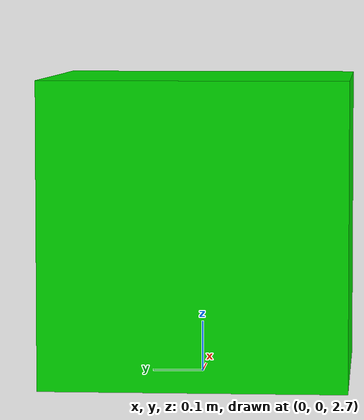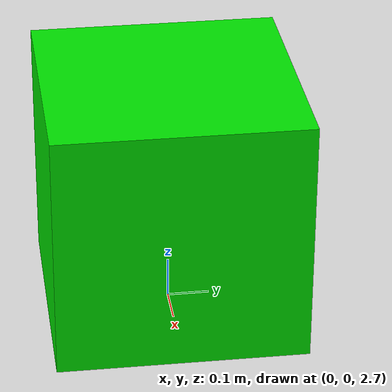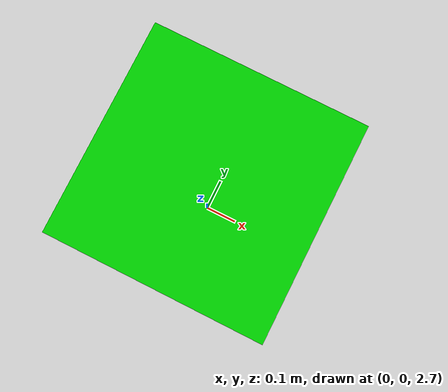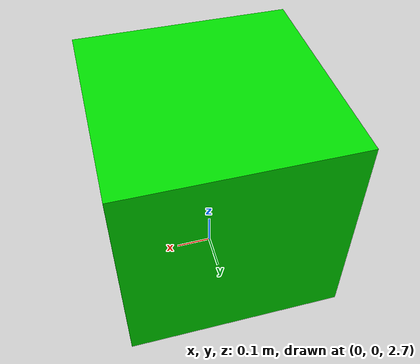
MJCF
<mujoco>
   <worldbody>
      <light diffuse=".5 .5 .5" pos="0 0 5" dir="0 0 -1"/>
      <geom type="plane" size="1 2 0.1" rgba=".9 0 0 1"/>
      <body pos="0 0 3">
         <joint type="free"/>
         <geom type="box" size=".3 .3 .3" rgba="0 .9 0 1"/>
      </body>
   </worldbody>
</mujoco>
